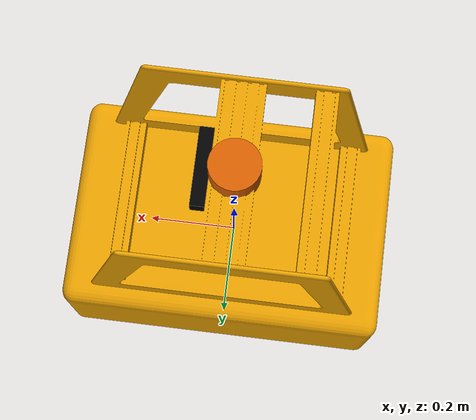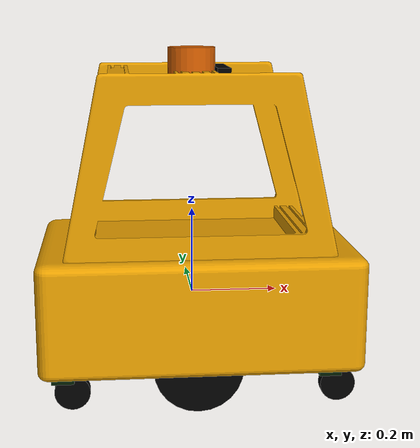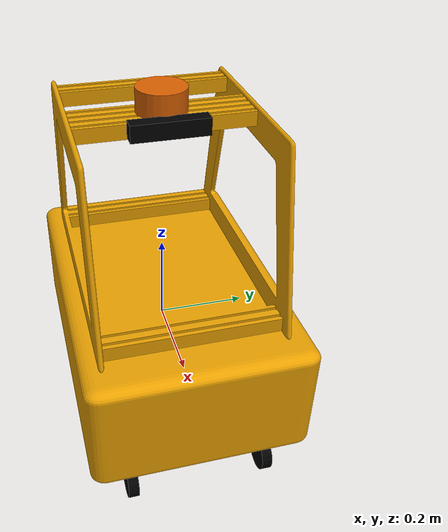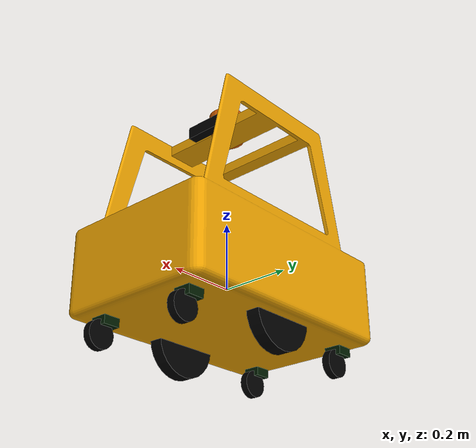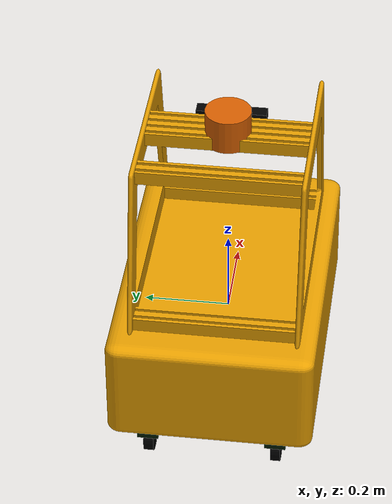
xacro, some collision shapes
<?xml version="1.0"?>
    <robot xmlns:xacro="http://www.ros.org/wiki/xacro"  name="moborobo_short">
        <xacro:include filename="robot_core.xacro" />
        <xacro:include filename="controller.xacro" />
        <xacro:include filename="camera.xacro"/>
        <xacro:include filename="$(find moborobo)/urdf/RS-16.urdf.xacro"/>
    </robot>

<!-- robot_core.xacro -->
<robot xmlns:xacro="http://www.ros.org/wiki/xacro">

    <link name="base_link">
        <visual>
            <geometry>
                <mesh filename="package://auto_tb/meshes/moborobo_short.stl" scale="1 1 1"/>
            </geometry>
        </visual>
        <collision>
            <geometry>
                <box size=".70 .470 .3"/>
            </geometry>
            <origin xyz="0 0 0.04" rpy="0 0 0" />
        </collision>
        <inertial>
            <mass value="20.0"/>
            <inertia ixx="0.51816" ixy="0" ixz="0" iyy="0.966664" iyz="0.0" izz="1.18484"/>
            <origin xyz="0 0 0.06" rpy="0 0 0" />
        </inertial>
    </link>

    <link name="front_caster_1">
        <visual>
            <geometry>
                <box size="0.05 0.05 0.05"/>
            </geometry>
            <material name="green">
                <color rgba="0.0 0.1 0.0 1"/>
            </material>
        </visual>
        <collision>
            <geometry>
                <box size="0.05 0.05 0.05"/>
            </geometry>
        </collision>
        <inertial>
            <mass value="0.5"/>
            <inertia ixx="0.000208332" ixy="0" ixz="0" iyy="0.000208332" iyz="0.0" izz="0.000208332"/>

        </inertial>
    </link>
    <joint name="front_caster_1_joint" type="continuous">
       <axis xyz="0.0 0.0 1"/>
       <parent link="base_link"/>
       <child link="front_caster_1"/>
       <origin xyz="-0.300 0.150 -0.130" rpy="0.0 0.0 0.0"/>
    </joint>

    <link name="front_wheel_1">
        <visual>
            <geometry>
                <cylinder radius="0.04" length="0.0228"/>
            </geometry>
            <material name="black">

            </material>

        </visual>
        <collision>
            <geometry>
                <cylinder radius="0.04" length="0.0228"/>
            </geometry>
        </collision>
        <inertial>
            <mass value="0.5"/>
            <inertia ixx="0.00022166" ixy="0" ixz="0" iyy="0.00022166" iyz="0.0" izz="0.0004"/>
        </inertial>
    </link>

    <joint name="front_wheel_1_joint" type="continuous">
        <axis xyz="0.0 0.0 1"/>
        <parent link="front_caster_1"/>
        <child link="front_wheel_1"/>
        <origin xyz="0.02 0.0 -0.05" rpy="-1.5708 0.0 0.0"/>

    </joint>

    <link name="front_caster_2">
        <visual>
            <geometry>
                <box size="0.05 0.05 0.05"/>
            </geometry>
            <material name="green">
                <color rgba="0.0 0.1 0.0 1"/>
            </material>
        </visual>
        <collision>
            <geometry>
                <box size="0.05 0.05 0.05"/>
            </geometry>
        </collision>
        <inertial>
            <mass value="0.5"/>
            <inertia ixx="0.000208332" ixy="0" ixz="0" iyy="0.000208332" iyz="0.0" izz="0.000208332"/>
        </inertial>
    </link>
    <joint name="front_caster_2_joint" type="continuous">
       <axis xyz="0.0 0.0 1"/>
       <parent link="base_link"/>
       <child link="front_caster_2"/>
       <origin xyz="-0.300 -0.150 -0.130" rpy="0.0 0.0 0.0"/>
    </joint>

    <link name="front_wheel_2">
        <visual>
            <geometry>
                <cylinder radius="0.04" length="0.0228"/>
            </geometry>
            <material name="black">

            </material>

        </visual>
        <collision>
            <geometry>
                <cylinder radius="0.04" length="0.0228"/>
            </geometry>
        </collision>
        <inertial>
            <mass value="0.5"/>
            <inertia ixx="0.00022166" ixy="0" ixz="0" iyy="0.00022166" iyz="0.0" izz="0.0004"/>
        </inertial>
    </link>

    <joint name="front_wheel_2_joint" type="continuous">
        <axis xyz="0.0 0.0 1"/>
        <parent link="front_caster_2"/>
        <child link="front_wheel_2"/>
        <origin xyz="0.02 0.0 -0.05" rpy="-1.5708 0.0 0.0"/>

    </joint>

    <link name="back_caster_1">
        <visual>
            <geometry>
                <box size="0.05 0.05 0.05"/>
            </geometry>
            <material name="green">
                <color rgba="0.0 0.1 0.0 1"/>
            </material>
        </visual>
        <collision>
            <geometry>
                <box size="0.05 0.05 0.05"/>
            </geometry>
        </collision>
        <inertial>
            <mass value="0.5"/>
            <inertia ixx="0.000208332" ixy="0" ixz="0" iyy="0.000208332" iyz="0.0" izz="0.000208332"/>
        </inertial>
    </link>
    <joint name="back_caster_1_joint" type="continuous">
       <axis xyz="0.0 0.0 1"/>
       <parent link="base_link"/>
       <child link="back_caster_1"/>
       <origin xyz="0.300 0.150 -0.130" rpy="0.0 0.0 0.0"/>
    </joint>

    <link name="back_wheel_1">
        <visual>
            <geometry>
                <cylinder radius="0.04" length="0.0228"/>
            </geometry>
            <material name="black">

            </material>

        </visual>
        <collision>
            <geometry>
                <cylinder radius="0.04" length="0.0228"/>
            </geometry>
        </collision>
        <inertial>
            <mass value="0.5"/>
            <inertia ixx="0.00022166" ixy="0" ixz="0" iyy="0.00022166" iyz="0.0" izz="0.0004"/>
        </inertial>
    </link>

    <joint name="back_wheel_1_joint" type="continuous">
        <axis xyz="0.0 0.0 1"/>
        <parent link="back_caster_1"/>
        <child link="back_wheel_1"/>
        <origin xyz="0.02 0.0 -0.05" rpy="-1.5708 0.0 0.0"/>

    </joint>

    <link name="back_caster_2">
        <visual>
            <geometry>
                <box size="0.05 0.05 0.05"/>
            </geometry>
            <material name="green">
                <color rgba="0.0 0.1 0.0 1"/>
            </material>
        </visual>
        <collision>
            <geometry>
                <box size="0.05 0.05 0.05"/>
            </geometry>
        </collision>
        <inertial>
            <mass value="0.5"/>
            <inertia ixx="0.000208332" ixy="0" ixz="0" iyy="0.000208332" iyz="0.0" izz="0.000208332"/>
        </inertial>
    </link>
    <joint name="back_caster_2_joint" type="continuous">
       <axis xyz="0.0 0.0 1"/>
       <parent link="base_link"/>
       <child link="back_caster_2"/>
       <origin xyz="0.300 -0.150 -0.130" rpy="0.0 0.0 0.0"/>
    </joint>

    <link name="back_wheel_2">
        <visual>
            <geometry>
                <cylinder radius="0.04" length="0.0228"/>
            </geometry>
            <material name="black">

            </material>

        </visual>
        <collision>
            <geometry>
                <cylinder radius="0.04" length="0.0228"/>
            </geometry>
        </collision>
        <inertial>
            <mass value="0.5"/>
            <inertia ixx="0.00022166" ixy="0" ixz="0" iyy="0.00022166" iyz="0.0" izz="0.0004"/>
        </inertial>
    </link>

    <joint name="back_wheel_2_joint" type="continuous">
        <axis xyz="0.0 0.0 1"/>
        <parent link="back_caster_2"/>
        <child link="back_wheel_2"/>
        <origin xyz="0.02 0.0 -0.05" rpy="-1.5708 0.0 0.0"/>

    </joint>

<link name="right_wheel">
        <visual>
            <geometry>
                <cylinder radius="0.1" length="0.04"/>
            </geometry>
            <material name="black">
                <color rgba="0.0 0.0 0.0 1"/>
            </material>

        </visual>
        <collision>
            <geometry>
                <cylinder radius="0.1" length="0.04"/>
            </geometry>
        </collision>
        <inertial>
            <mass value="2"/>
            <inertia ixx="0.005066668" ixy="0" ixz="0" iyy="0.005066668" iyz="0.0" izz="0.01"/>        </inertial>
    </link>

    <joint name="right_wheel_joint" type="continuous">
        <axis xyz="0.0 0.0 1"/>
        <parent link="base_link"/>
        <child link="right_wheel"/>
        <origin xyz="0.0 -0.175 -0.120" rpy="-1.5708 0.0 0.0"/>

    </joint>
    <link name="left_wheel">
        <visual>
            <geometry>
                <cylinder radius="0.1" length="0.04"/>
            </geometry>
            <material name="black">
                <color rgba="0.0 0.0 0.0 1"/>
            </material>

        </visual>
        <collision>
            <geometry>
                <cylinder radius="0.1" length="0.04"/>
            </geometry>
        </collision>
        <inertial>
            <mass value="0.5"/>
            <inertia ixx="0.001266667" ixy="0" ixz="0" iyy="0.001266667" iyz="0.0" izz="0.0025"/>        </inertial>
    </link>

    <joint name="left_wheel_joint" type="continuous">
        <axis xyz="0.0 0.0 1"/>
        <parent link="base_link"/>
        <child link="left_wheel"/>
        <origin xyz="0.0 0.175 -0.120" rpy="-1.5708 0.0 0.0"/>

    </joint>

    <gazebo>
        <plugin name="joint_state_publisher"
                filename="libgazebo_ros_joint_state_publisher.so">
            <jointName>front_caster_1_joint, front_wheel_1_joint, front_caster_2_joint, front_wheel_2_joint,
                back_caster_1_joint, back_wheel_1_joint, back_caster_2_joint, back_wheel_2_joint
            </jointName>
        </plugin>
    </gazebo>

    <gazebo reference="front_caster_1">
        <material>Gazebo/White</material>
      </gazebo>
      <gazebo reference="front_wheel_1">
        <material>Gazebo/Black</material>
      </gazebo>
      <gazebo reference="front_caster_2">
        <material>Gazebo/White</material>
      </gazebo>
      <gazebo reference="front_wheel_2">
        <material>Gazebo/Black</material>
      </gazebo>
      <gazebo reference="back_caster_1">
        <material>Gazebo/White</material>
      </gazebo>
      <gazebo reference="back_wheel_1">
        <material>Gazebo/Black</material>
      </gazebo>
      <gazebo reference="back_caster_2">
        <material>Gazebo/White</material>
      </gazebo>
      <gazebo reference="back_wheel_2">
        <material>Gazebo/Black</material>
      </gazebo>
      <gazebo reference="left_wheel">
        <material>Gazebo/Black</material>
      </gazebo>
      <gazebo reference="right_wheel">
        <material>Gazebo/Black</material>
      </gazebo>

    </robot>

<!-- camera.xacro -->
<robot xmlns:xacro="http://www.ros.org/wiki/xacro" >

    <joint name="camera_joint" type="fixed">
        <parent link="base_link"/>
        <child link="camera_link"/>
        <origin xyz="0.065 0 0.51" rpy="0 0 0"/>
    </joint>

    <link name="camera_link">
        <visual>
            <geometry>
                <box size="0.03 0.163 0.037"/>
            </geometry>
            <material name="black">
            </material>
        </visual>
    </link>

    <joint name="camera_optical_joint" type="fixed">
        <parent link="camera_link"/>
        <child link="camera_link_optical"/>
        <origin xyz="0 0 0" rpy="${-pi/2} 0 ${-pi/2}"/>
    </joint>

    <link name="camera_link_optical"></link>

    <gazebo reference="camera_link">
        <material>Gazebo/Red</material>

        <sensor name="camera" type="camera">
            <pose> 0 0 0 0 0 0 </pose>
            <visualize>true</visualize>
            <update_rate>10</update_rate>
            <camera>
                <horizontal_fov>1.089</horizontal_fov>
                <image>
                    <format>R8G8B8</format>
                    <width>640</width>
                    <height>480</height>
                </image>
                <clip>
                    <near>0.05</near>
                    <far>8.0</far>
                </clip>
            </camera>
            <plugin name="camera_controller" filename="libgazebo_ros_camera.so">
                <frame_name>camera_link_optical</frame_name>
            </plugin>
        </sensor>
    </gazebo>

    <gazebo reference="camera_link">
        <material>Gazebo/Black</material>
      </gazebo>

</robot>

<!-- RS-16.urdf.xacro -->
<robot xmlns:xacro="http://www.ros.org/wiki/xacro" name="RS-16">
  <xacro:property name="M_PI" value="3.1415926535897931" />

  <joint name="robosense_base_mount_joint" type="fixed">
    <parent link="base_link"/>
    <child link="robosense_base_link"/>
  </joint>

  <link name="robosense_base_link">
    <inertial>
      <mass value="0.87"/>
      <origin xyz="0 0 0.53"/>
      <inertia ixx="0.001094695" ixy="0" ixz="0"
        iyy="0.001094695" iyz="0"
        izz="0.001245079"/>
    </inertial>
    <visual>
      <origin rpy="-1.5707 0 0" xyz="0.005 0 0.53"/>
      <geometry>
        <mesh filename="$(find moborobo)/meshes/robosense_16.dae" scale="0.82 0.82 0.82"/>
      </geometry>
    </visual>
    <collision>
      <origin rpy="0 0 0" xyz="0 0 0.53"/>
      <geometry>
        <cylinder radius="0.0535" length="0.0817"/>
      </geometry>
    </collision>
  </link>

  <joint name="robosense_base_scan_joint" type="fixed" >
    <origin xyz="0 0 0.039" rpy="0 0 0" />
    <parent link="robosense_base_link" />
    <child link="robosense"/>
  </joint>

  <link name="robosense">
    <inertial>
      <mass value="0.01"/>
      <origin xyz="0 0 0"/>
      <inertia ixx="1e-7" ixy="0" ixz="0" iyy="1e-7" iyz="0" izz="1e-7"/>
    </inertial>
  </link>

  <!-- Gazebo requires the robosense_gazebo_plugins package -->
  <gazebo reference="robosense">
      <sensor type="gpu_ray" name="robosense-RS16">
        <pose>0 0 0 0 0 0</pose>
        <visualize>false</visualize>
        <update_rate>1</update_rate>
        <ray>
          <scan>
            <horizontal>
              <samples>900</samples>
              <resolution>1</resolution>
              <min_angle>-3.14</min_angle>
              <max_angle>3.14</max_angle>
            </horizontal>
            <vertical>
              <samples>900</samples>
              <resolution>1</resolution>
              <min_angle>-2.7</min_angle>
              <max_angle>2.7</max_angle>
            </vertical>
          </scan>
          <range>
            <min>0.4</min>
            <max>150.0</max>
            <resolution>0.001</resolution>
          </range>
          <noise>
            <type>gaussian</type>
            <mean>0.0</mean>
            <stddev>0.0</stddev>
          </noise>
        </ray>
        <plugin name="gazebo_ros_laser_controller" filename="libgazebo_ros_robosense_gpu_laser.so">
          <topicName>/rs_points</topicName>
          <frameName>robosense</frameName>
          <min_range>0.4</min_range>
          <max_range>150.0</max_range>
          <gaussianNoise>0.008</gaussianNoise>
        </plugin>
      </sensor>
  </gazebo>

</robot>
